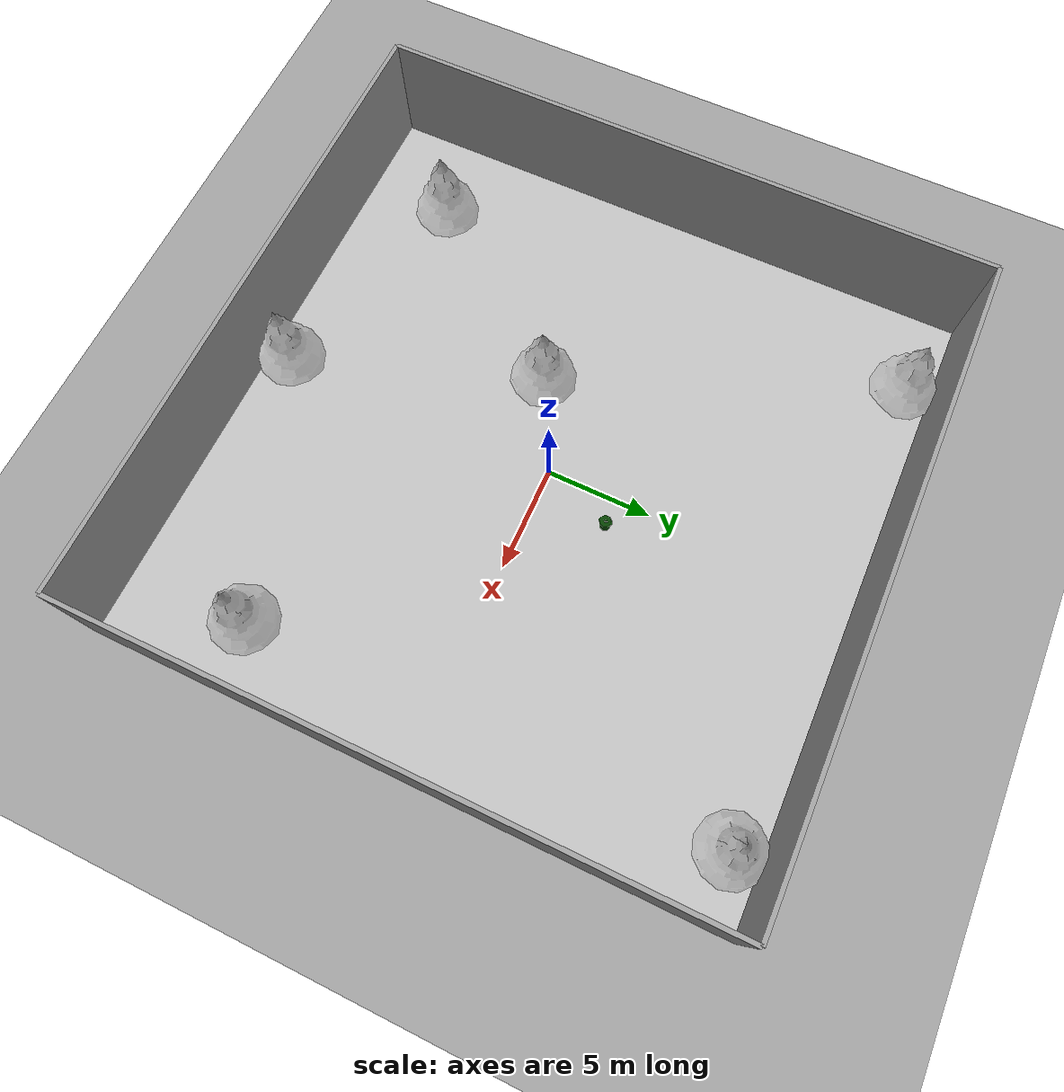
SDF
<sdf version="1.5">
 <world name="default">
  <include><uri>model://sun</uri></include>
  <include><uri>model://modified_ground_plane</uri></include>
  <include><uri>model://modified_concrete_plane</uri></include>
  <include>
   <name>first_2015_trash_can</name>
   <uri>model://first_2015_trash_can</uri>
   <pose>1.3239 3.403029 0 0 -0 0</pose>
  </include>
  <include><uri>model://pine_tree</uri><name>forest</name><pose>12 13.5 0 0 0 0</pose></include>
  <include><uri>model://pine_tree</uri><name>forest</name><pose>-10.5 13.5 0 0 0 0</pose></include>
  <include><uri>model://pine_tree</uri><name>forest</name><pose>12 -9 0 0 0 0</pose></include>
  <include><uri>model://pine_tree</uri><name>forest</name><pose>-10.5 -10.5 0 0 0 0</pose></include>
  <include><uri>model://pine_tree</uri><name>forest</name><pose>-4 -2.15 0 0 0 0</pose></include>
  <include><uri>model://pine_tree</uri><name>forest</name><pose>0 -13.5 0 0 0 0</pose></include>
  <include>
   <name>modified_grey_wall</name>
   <uri>model://modified_grey_wall</uri>
   <pose>-15 0 0 0 0 -1.570796</pose>
  </include>
  <include>
   <name>modified_grey_wall2</name>
   <uri>model://modified_grey_wall</uri>
   <pose>0 15 0 0 0 0</pose>
  </include>
  <include>
   <name>modified_grey_wall3</name>
   <uri>model://modified_grey_wall</uri>
   <pose>15 0 0 0 0 -1.570796</pose>
  </include>
  <include>
   <name>modified_grey_wall4</name>
   <uri>model://modified_grey_wall</uri>
   <pose>0 -15 0 0 0 0</pose>
  </include>
  <physics name="default_physics" default="0" type="ode">
   <gravity>0 0 -9.8066</gravity>
   <ode>
    <solver>
     <type>quick</type>
     <iters>10</iters>
     <sor>1.3</sor>
     <use_dynamic_moi_rescaling>0</use_dynamic_moi_rescaling>
    </solver>
    <constraints>
     <cfm>0</cfm>
     <erp>0.2</erp>
     <contact_max_correcting_vel>100</contact_max_correcting_vel>
     <contact_surface_layer>0.001</contact_surface_layer>
    </constraints>
   </ode>
   <max_step_size>0.004</max_step_size>
   <real_time_factor>1</real_time_factor>
   <real_time_update_rate>250</real_time_update_rate>
   <magnetic_field>6.0e-6 2.3e-5 -4.2e-5</magnetic_field>
  </physics>
 </world>
</sdf>

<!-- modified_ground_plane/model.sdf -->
<sdf version="1.5">
  <model name="modified_ground_plane">
    <static>true</static>
    <link name="link">
      <pose>-10 -10 0 0 0 0</pose>
      <collision name="collision">
        <geometry>
          <plane>
            <normal>0 0 1</normal>
            <size>200 200</size>
          </plane>
        </geometry>
        <surface>
          <contact>
             <collide_bitmask>65535</collide_bitmask>
          </contact>
          <friction>
            <ode>
              <mu>100</mu>
              <mu2>50</mu2>
            </ode>
          </friction>
        </surface>
      </collision>
      <visual name="visual">
        <cast_shadows>false</cast_shadows>
        <geometry>
          <plane>
            <normal>0 0 1</normal>
            <size>200 200</size>
          </plane>
        </geometry>
        <material>
          <script>
            <uri>file://media/materials/scripts/gazebo.material</uri>
            <name>Gazebo/Grey</name>
          </script>
        </material>
      </visual>
    </link>
  </model>
</sdf>

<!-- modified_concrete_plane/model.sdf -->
<sdf version="1.5">
  <model name="modified_concrete_plane">
    <static>true</static>
    <link name="link">
      <collision name="collision">
        <geometry>
          <box>
            <size>30 30 .1</size>
          </box>
        </geometry>
      </collision>
      <visual name="visual">
        <cast_shadows>false</cast_shadows>
        <geometry>
          <box>
            <size>30 30 .1</size>
          </box>
        </geometry>
        <material>
          <script>
            <uri>model://concrete_plane/materials/scripts</uri>
            <uri>model://concrete_plane/materials/textures</uri>
            <name>vrc/concrete</name>
          </script>
        </material>
      </visual>
    </link>
  </model>
</sdf>

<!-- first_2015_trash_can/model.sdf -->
<sdf version="1.5">
  <model name="first_2015_trash_can">
    <link name="link">
      <inertial>
        <pose>0 0 0.3683 0 0 0</pose>
        <mass>4.83076</mass>
        <inertia>
          <ixx>0.281534052</ixx>
          <ixy>0</ixy>
          <ixz>0</ixz>
          <iyy>0.281534052</iyy>
          <iyz>0</iyz>
          <izz>0.126222831</izz>
        </inertia>
      </inertial>

      <visual name="visual">
        <geometry>
          <mesh>
            <uri>model://first_2015_trash_can/meshes/trash_can.dae</uri>
          </mesh>
        </geometry>
      </visual>

      <collision name="collision">
        <geometry>
          <mesh>
            <uri>model://first_2015_trash_can/meshes/trash_can.dae</uri>
          </mesh>
        </geometry>
      </collision>
    </link>
  </model>
</sdf>

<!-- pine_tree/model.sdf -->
<sdf version="1.6">
  <model name="pine_tree">
    <static>true</static>
    <link name="link">
      <collision name="collision">
        <geometry>
          <mesh>
            <uri>file://isr-testbed/pine_tree/meshes/pine_tree.dae</uri>
          </mesh>
        </geometry>
      </collision>
      <visual name="branch">
        <geometry>
          <mesh>
            <uri>file://isr-testbed/pine_tree/meshes/pine_tree.dae</uri>
            <submesh>
              <name>Branch</name>
            </submesh>
          </mesh>
        </geometry>
        <material>
          <script>
            <uri>file://isr-testbed/pine_tree/materials/scripts/</uri>
            <uri>file://isr-testbed/pine_tree/materials/textures/</uri>
            <name>PineTree/Branch</name>
          </script>
        </material>
      </visual>
      <visual name="bark">
        <geometry>
          <mesh>
            <uri>file://isr-testbed/pine_tree/meshes/pine_tree.dae</uri>
            <submesh>
              <name>Bark</name>
            </submesh>
          </mesh>
        </geometry>
        <material>
          <script>
            <uri>file://isr-testbed/pine_tree/materials/scripts/</uri>
            <uri>file://isr-testbed/pine_tree/materials/textures/</uri>
            <name>PineTree/Bark</name>
          </script>
        </material>
      </visual>
    </link>
  </model>
</sdf>

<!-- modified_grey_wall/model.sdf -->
<sdf version="1.5">
  <model name="modified_grey_wall">
    <static>true</static>
    <link name="link">
      <pose>0 0 3 0 0 0</pose>
      <collision name="collision">
        <geometry>
          <box>
            <size>30.0 0.2 6.0</size>
          </box>
        </geometry>
      </collision>
      <visual name="visual">
        <cast_shadows>false</cast_shadows>
        <geometry>
          <box>
            <size>30.0 0.2 6.0</size>
          </box>
        </geometry>
        <material>
          <script>
            <uri>model://modified_grey_wall/materials/scripts</uri>
            <uri>model://modified_grey_wall/materials/textures</uri>
            <name>vrc/grey_wall</name>
          </script>
        </material>
      </visual>
    </link>
  </model>
</sdf>
